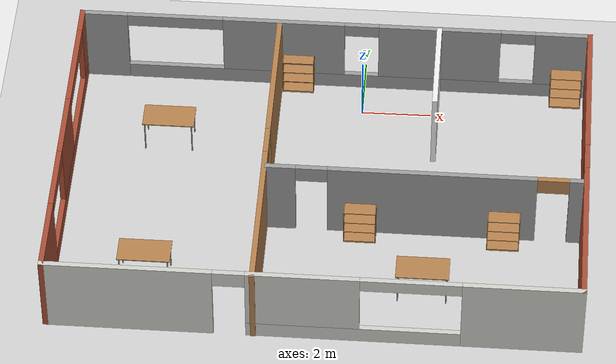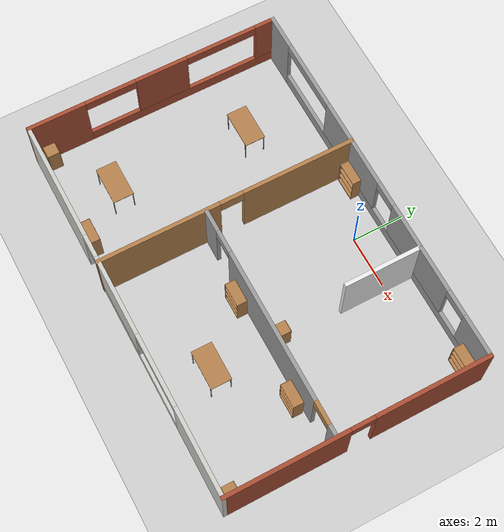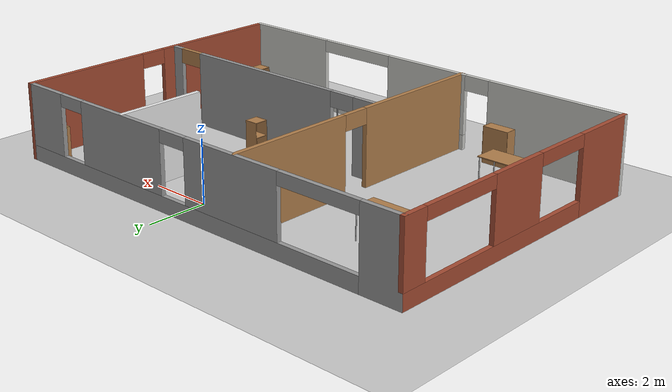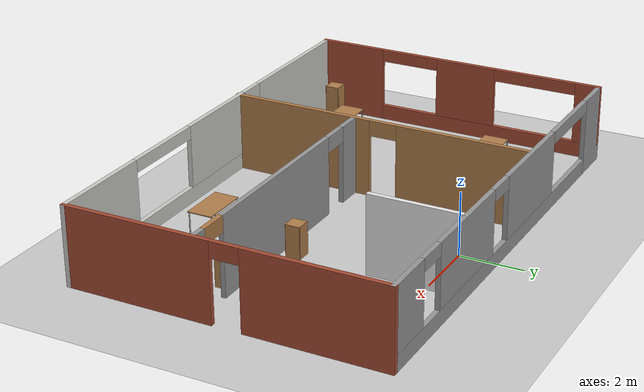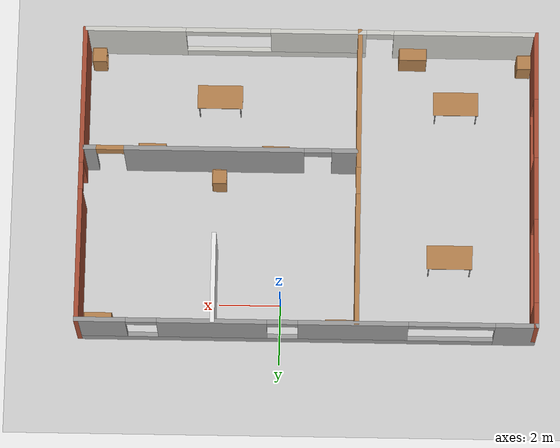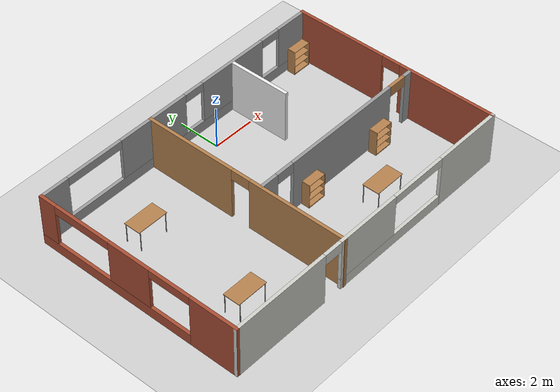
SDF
<sdf version="1.6">
 <world name="default">
  <light name="sun" type="directional">
   <pose>0 0 10 0 -0 0</pose>
   <diffuse>0.8 0.8 0.8 1</diffuse>
   <specular>0.2 0.2 0.2 1</specular>
   <attenuation>
    <range>1000</range>
    <constant>0.9</constant>
    <linear>0.01</linear>
    <quadratic>0.001</quadratic>
   </attenuation>
   <direction>-0.5 0.1 -0.9</direction>
  </light>
  <model name="ground_plane">
   <static>1</static>
   <link name="link">
    <collision name="collision">
     <geometry><plane><normal>0 0 1</normal><size>100 100</size></plane></geometry>
     <surface><friction><ode><mu>100</mu><mu2>50</mu2></ode></friction></surface>
    </collision>
    <visual name="visual">
     <cast_shadows>0</cast_shadows>
     <geometry><plane><normal>0 0 1</normal><size>100 100</size></plane></geometry>
     <material>
      <script><uri>file://media/materials/scripts/gazebo.material</uri><name>Gazebo/Grey</name></script>
     </material>
    </visual>
   </link>
  </model>
  <gravity>0 0 -9.8</gravity>
  <magnetic_field>6e-06 2.3e-05 -4.2e-05</magnetic_field>
  <atmosphere type="adiabatic"/>
  <physics name="default_physics" default="0" type="ode">
   <max_step_size>0.001</max_step_size>
   <real_time_factor>1</real_time_factor>
   <real_time_update_rate>1000</real_time_update_rate>
  </physics>
  <scene><ambient>0.4 0.4 0.4 1</ambient><background>0.7 0.7 0.7 1</background><shadows>1</shadows></scene>
  <spherical_coordinates>
   <surface_model>EARTH_WGS84</surface_model>
   <latitude_deg>0</latitude_deg>
   <longitude_deg>0</longitude_deg>
   <elevation>0</elevation>
   <heading_deg>0</heading_deg>
  </spherical_coordinates>
  <model name="Building">
   <pose>-0.87492 -3.80883 0 0 -0 0</pose>
   <link name="Wall_11">
    <collision name="Wall_11_Collision">
     <geometry><box><size>3 0.15 2.5</size></box></geometry>
     <pose>0 0 1.25 0 -0 0</pose>
    </collision>
    <visual name="Wall_11_Visual">
     <pose>0 0 1.25 0 -0 0</pose>
     <geometry><box><size>3 0.15 2.5</size></box></geometry>
     <material>
      <script><uri>file://media/materials/scripts/gazebo.material</uri><name>Gazebo/White</name></script>
      <ambient>0.996078 0.47451 0.0196078 1</ambient>
     </material>
     <meta><layer>0</layer></meta>
    </visual>
    <pose>3.03862 3.47222 0 0 0 -1.5708</pose>
   </link>
   <link name="Wall_2">
    <pose>-7.425 0.012574 0 0 -0 1.5708</pose>
    <visual name="Wall_2_Visual_0">
     <pose>-3.85798 0 1.25 0 -0 0</pose>
     <geometry><box><size>2.28405 0.15 2.5</size></box></geometry>
     <material>
      <script><uri>file://media/materials/scripts/gazebo.material</uri><name>Gazebo/Bricks</name></script>
      <ambient>1 1 1 1</ambient>
     </material>
     <meta><layer>0</layer></meta>
    </visual>
    <collision name="Wall_2_Collision_0">
     <geometry><box><size>2.28405 0.15 2.5</size></box></geometry>
     <pose>-3.85798 0 1.25 0 -0 0</pose>
    </collision>
    <visual name="Wall_2_Visual_1">
     <pose>1.14202 0 0.25 0 -0 0</pose>
     <geometry><box><size>7.71595 0.15 0.5</size></box></geometry>
     <material>
      <script><uri>file://media/materials/scripts/gazebo.material</uri><name>Gazebo/Bricks</name></script>
      <ambient>1 1 1 1</ambient>
     </material>
     <meta><layer>0</layer></meta>
    </visual>
    <collision name="Wall_2_Collision_1">
     <geometry><box><size>7.71595 0.15 0.5</size></box></geometry>
     <pose>1.14202 0 0.25 0 -0 0</pose>
    </collision>
    <visual name="Wall_2_Visual_2">
     <pose>0.319732 0 1.5 0 -0 0</pose>
     <geometry><box><size>2.07137 0.15 2</size></box></geometry>
     <material>
      <script><uri>file://media/materials/scripts/gazebo.material</uri><name>Gazebo/Bricks</name></script>
      <ambient>1 1 1 1</ambient>
     </material>
     <meta><layer>0</layer></meta>
    </visual>
    <collision name="Wall_2_Collision_2">
     <geometry><box><size>2.07137 0.15 2</size></box></geometry>
     <pose>0.319732 0 1.5 0 -0 0</pose>
    </collision>
    <visual name="Wall_2_Visual_3">
     <pose>4.57771 0 1.5 0 -0 0</pose>
     <geometry><box><size>0.844581 0.15 2</size></box></geometry>
     <material>
      <script><uri>file://media/materials/scripts/gazebo.material</uri><name>Gazebo/Bricks</name></script>
      <ambient>1 1 1 1</ambient>
     </material>
     <meta><layer>0</layer></meta>
    </visual>
    <collision name="Wall_2_Collision_3">
     <geometry><box><size>0.844581 0.15 2</size></box></geometry>
     <pose>4.57771 0 1.5 0 -0 0</pose>
    </collision>
    <visual name="Wall_2_Visual_4">
     <pose>-1.71595 0 2.3 0 -0 0</pose>
     <geometry><box><size>2 0.15 0.4</size></box></geometry>
     <material>
      <script><uri>file://media/materials/scripts/gazebo.material</uri><name>Gazebo/Bricks</name></script>
      <ambient>1 1 1 1</ambient>
     </material>
     <meta><layer>0</layer></meta>
    </visual>
    <collision name="Wall_2_Collision_4">
     <geometry><box><size>2 0.15 0.4</size></box></geometry>
     <pose>-1.71595 0 2.3 0 -0 0</pose>
    </collision>
    <visual name="Wall_2_Visual_5">
     <pose>2.75542 0 2.3 0 -0 0</pose>
     <geometry><box><size>2.8 0.15 0.4</size></box></geometry>
     <material>
      <script><uri>file://media/materials/scripts/gazebo.material</uri><name>Gazebo/Bricks</name></script>
      <ambient>1 1 1 1</ambient>
     </material>
     <meta><layer>0</layer></meta>
    </visual>
    <collision name="Wall_2_Collision_5">
     <geometry><box><size>2.8 0.15 0.4</size></box></geometry>
     <pose>2.75542 0 2.3 0 -0 0</pose>
    </collision>
   </link>
   <link name="Wall_3">
    <pose>0 4.93757 0 0 -0 0</pose>
    <visual name="Wall_3_Visual_0">
     <pose>-6.80132 0 1.25 0 -0 0</pose>
     <geometry><box><size>1.39737 0.15 2.5</size></box></geometry>
     <material>
      <script><uri>file://media/materials/scripts/gazebo.material</uri><name>Gazebo/Grey</name></script>
      <ambient>1 1 1 1</ambient>
     </material>
     <meta><layer>0</layer></meta>
    </visual>
    <collision name="Wall_3_Collision_0">
     <geometry><box><size>1.39737 0.15 2.5</size></box></geometry>
     <pose>-6.80132 0 1.25 0 -0 0</pose>
    </collision>
    <visual name="Wall_3_Visual_1">
     <pose>0.698683 0 0.25 0 -0 0</pose>
     <geometry><box><size>13.6026 0.15 0.5</size></box></geometry>
     <material>
      <script><uri>file://media/materials/scripts/gazebo.material</uri><name>Gazebo/Grey</name></script>
      <ambient>1 1 1 1</ambient>
     </material>
     <meta><layer>0</layer></meta>
    </visual>
    <collision name="Wall_3_Collision_1">
     <geometry><box><size>13.6026 0.15 0.5</size></box></geometry>
     <pose>0.698683 0 0.25 0 -0 0</pose>
    </collision>
    <visual name="Wall_3_Visual_2">
     <pose>-1.51506 0 1.5 0 -0 0</pose>
     <geometry><box><size>3.57515 0.15 2</size></box></geometry>
     <material>
      <script><uri>file://media/materials/scripts/gazebo.material</uri><name>Gazebo/Grey</name></script>
      <ambient>1 1 1 1</ambient>
     </material>
     <meta><layer>0</layer></meta>
    </visual>
    <collision name="Wall_3_Collision_2">
     <geometry><box><size>3.57515 0.15 2</size></box></geometry>
     <pose>-1.51506 0 1.5 0 -0 0</pose>
    </collision>
    <visual name="Wall_3_Visual_3">
     <pose>3.05383 0 1.5 0 -0 0</pose>
     <geometry><box><size>3.56263 0.15 2</size></box></geometry>
     <material>
      <script><uri>file://media/materials/scripts/gazebo.material</uri><name>Gazebo/Grey</name></script>
      <ambient>1 1 1 1</ambient>
     </material>
     <meta><layer>0</layer></meta>
    </visual>
    <collision name="Wall_3_Collision_3">
     <geometry><box><size>3.56263 0.15 2</size></box></geometry>
     <pose>3.05383 0 1.5 0 -0 0</pose>
    </collision>
    <visual name="Wall_3_Visual_4">
     <pose>6.66757 0 1.5 0 -0 0</pose>
     <geometry><box><size>1.66486 0.15 2</size></box></geometry>
     <material>
      <script><uri>file://media/materials/scripts/gazebo.material</uri><name>Gazebo/Grey</name></script>
      <ambient>1 1 1 1</ambient>
     </material>
     <meta><layer>0</layer></meta>
    </visual>
    <collision name="Wall_3_Collision_4">
     <geometry><box><size>1.66486 0.15 2</size></box></geometry>
     <pose>6.66757 0 1.5 0 -0 0</pose>
    </collision>
    <visual name="Wall_3_Visual_5">
     <pose>-4.70263 0 2.3 0 -0 0</pose>
     <geometry><box><size>2.8 0.15 0.4</size></box></geometry>
     <material>
      <script><uri>file://media/materials/scripts/gazebo.material</uri><name>Gazebo/Grey</name></script>
      <ambient>1 1 1 1</ambient>
     </material>
     <meta><layer>0</layer></meta>
    </visual>
    <collision name="Wall_3_Collision_5">
     <geometry><box><size>2.8 0.15 0.4</size></box></geometry>
     <pose>-4.70263 0 2.3 0 -0 0</pose>
    </collision>
    <visual name="Wall_3_Visual_6">
     <pose>0.772516 0 2.3 0 -0 0</pose>
     <geometry><box><size>1 0.15 0.4</size></box></geometry>
     <material>
      <script><uri>file://media/materials/scripts/gazebo.material</uri><name>Gazebo/Grey</name></script>
      <ambient>1 1 1 1</ambient>
     </material>
     <meta><layer>0</layer></meta>
    </visual>
    <collision name="Wall_3_Collision_6">
     <geometry><box><size>1 0.15 0.4</size></box></geometry>
     <pose>0.772516 0 2.3 0 -0 0</pose>
    </collision>
    <visual name="Wall_3_Visual_7">
     <pose>5.33514 0 2.3 0 -0 0</pose>
     <geometry><box><size>1 0.15 0.4</size></box></geometry>
     <material>
      <script><uri>file://media/materials/scripts/gazebo.material</uri><name>Gazebo/Grey</name></script>
      <ambient>1 1 1 1</ambient>
     </material>
     <meta><layer>0</layer></meta>
    </visual>
    <collision name="Wall_3_Collision_7">
     <geometry><box><size>1 0.15 0.4</size></box></geometry>
     <pose>5.33514 0 2.3 0 -0 0</pose>
    </collision>
   </link>
   <link name="Wall_4">
    <pose>7.425 0.012574 0 0 0 -1.5708</pose>
    <visual name="Wall_4_Visual_0">
     <pose>-2.78715 0 1.25 0 -0 0</pose>
     <geometry><box><size>4.4257 0.15 2.5</size></box></geometry>
     <material>
      <script><uri>file://media/materials/scripts/gazebo.material</uri><name>Gazebo/Bricks</name></script>
      <ambient>1 1 1 1</ambient>
     </material>
     <meta><layer>0</layer></meta>
    </visual>
    <collision name="Wall_4_Collision_0">
     <geometry><box><size>4.4257 0.15 2.5</size></box></geometry>
     <pose>-2.78715 0 1.25 0 -0 0</pose>
    </collision>
    <visual name="Wall_4_Visual_1">
     <pose>2.66285 0 1.25 0 -0 0</pose>
     <geometry><box><size>4.67431 0.15 2.5</size></box></geometry>
     <material>
      <script><uri>file://media/materials/scripts/gazebo.material</uri><name>Gazebo/Bricks</name></script>
      <ambient>1 1 1 1</ambient>
     </material>
     <meta><layer>0</layer></meta>
    </visual>
    <collision name="Wall_4_Collision_1">
     <geometry><box><size>4.67431 0.15 2.5</size></box></geometry>
     <pose>2.66285 0 1.25 0 -0 0</pose>
    </collision>
    <visual name="Wall_4_Visual_2">
     <pose>-0.124305 0 2.25 0 -0 0</pose>
     <geometry><box><size>0.9 0.15 0.5</size></box></geometry>
     <material>
      <script><uri>file://media/materials/scripts/gazebo.material</uri><name>Gazebo/Bricks</name></script>
      <ambient>1 1 1 1</ambient>
     </material>
     <meta><layer>0</layer></meta>
    </visual>
    <collision name="Wall_4_Collision_2">
     <geometry><box><size>0.9 0.15 0.5</size></box></geometry>
     <pose>-0.124305 0 2.25 0 -0 0</pose>
    </collision>
   </link>
   <link name="Wall_5">
    <pose>0 -4.91243 0 0 -0 3.14159</pose>
    <visual name="Wall_5_Visual_0">
     <pose>-5.80962 0 1.25 0 -0 0</pose>
     <geometry><box><size>3.38076 0.15 2.5</size></box></geometry>
     <material>
      <script><uri>file://media/materials/scripts/gazebo.material</uri><name>Gazebo/CeilingTiled</name></script>
      <ambient>1 1 1 1</ambient>
     </material>
     <meta><layer>0</layer></meta>
    </visual>
    <collision name="Wall_5_Collision_0">
     <geometry><box><size>3.38076 0.15 2.5</size></box></geometry>
     <pose>-5.80962 0 1.25 0 -0 0</pose>
    </collision>
    <visual name="Wall_5_Visual_1">
     <pose>5.11722 0 1.25 0 -0 0</pose>
     <geometry><box><size>4.76556 0.15 2.5</size></box></geometry>
     <material>
      <script><uri>file://media/materials/scripts/gazebo.material</uri><name>Gazebo/CeilingTiled</name></script>
      <ambient>1 1 1 1</ambient>
     </material>
     <meta><layer>0</layer></meta>
    </visual>
    <collision name="Wall_5_Collision_1">
     <geometry><box><size>4.76556 0.15 2.5</size></box></geometry>
     <pose>5.11722 0 1.25 0 -0 0</pose>
    </collision>
    <visual name="Wall_5_Visual_2">
     <pose>-1.1424 0 0.25 0 -0 0</pose>
     <geometry><box><size>5.95368 0.15 0.5</size></box></geometry>
     <material>
      <script><uri>file://media/materials/scripts/gazebo.material</uri><name>Gazebo/CeilingTiled</name></script>
      <ambient>1 1 1 1</ambient>
     </material>
     <meta><layer>0</layer></meta>
    </visual>
    <collision name="Wall_5_Collision_2">
     <geometry><box><size>5.95368 0.15 0.5</size></box></geometry>
     <pose>-1.1424 0 0.25 0 -0 0</pose>
    </collision>
    <visual name="Wall_5_Visual_3">
     <pose>0.257603 0 1.5 0 -0 0</pose>
     <geometry><box><size>3.15368 0.15 2</size></box></geometry>
     <material>
      <script><uri>file://media/materials/scripts/gazebo.material</uri><name>Gazebo/CeilingTiled</name></script>
      <ambient>1 1 1 1</ambient>
     </material>
     <meta><layer>0</layer></meta>
    </visual>
    <collision name="Wall_5_Collision_3">
     <geometry><box><size>3.15368 0.15 2</size></box></geometry>
     <pose>0.257603 0 1.5 0 -0 0</pose>
    </collision>
    <visual name="Wall_5_Visual_4">
     <pose>2.28444 0 2.25 0 -0 0</pose>
     <geometry><box><size>0.9 0.15 0.5</size></box></geometry>
     <material>
      <script><uri>file://media/materials/scripts/gazebo.material</uri><name>Gazebo/CeilingTiled</name></script>
      <ambient>1 1 1 1</ambient>
     </material>
     <meta><layer>0</layer></meta>
    </visual>
    <collision name="Wall_5_Collision_4">
     <geometry><box><size>0.9 0.15 0.5</size></box></geometry>
     <pose>2.28444 0 2.25 0 -0 0</pose>
    </collision>
    <visual name="Wall_5_Visual_5">
     <pose>-2.71924 0 2.3 0 -0 0</pose>
     <geometry><box><size>2.8 0.15 0.4</size></box></geometry>
     <material>
      <script><uri>file://media/materials/scripts/gazebo.material</uri><name>Gazebo/CeilingTiled</name></script>
      <ambient>1 1 1 1</ambient>
     </material>
     <meta><layer>0</layer></meta>
    </visual>
    <collision name="Wall_5_Collision_5">
     <geometry><box><size>2.8 0.15 0.4</size></box></geometry>
     <pose>-2.71924 0 2.3 0 -0 0</pose>
    </collision>
   </link>
   <link name="Wall_7">
    <pose>-1.63047 -0.012574 0 0 0 -1.5708</pose>
    <visual name="Wall_7_Visual_0">
     <pose>-2.80733 0 1.25 0 -0 0</pose>
     <geometry><box><size>4.38534 0.15 2.5</size></box></geometry>
     <material>
      <script><uri>file://media/materials/scripts/gazebo.material</uri><name>Gazebo/Wood</name></script>
      <ambient>1 1 1 1</ambient>
     </material>
     <meta><layer>0</layer></meta>
    </visual>
    <collision name="Wall_7_Collision_0">
     <geometry><box><size>4.38534 0.15 2.5</size></box></geometry>
     <pose>-2.80733 0 1.25 0 -0 0</pose>
    </collision>
    <visual name="Wall_7_Visual_1">
     <pose>2.64267 0 1.25 0 -0 0</pose>
     <geometry><box><size>4.71466 0.15 2.5</size></box></geometry>
     <material>
      <script><uri>file://media/materials/scripts/gazebo.material</uri><name>Gazebo/Wood</name></script>
      <ambient>1 1 1 1</ambient>
     </material>
     <meta><layer>0</layer></meta>
    </visual>
    <collision name="Wall_7_Collision_1">
     <geometry><box><size>4.71466 0.15 2.5</size></box></geometry>
     <pose>2.64267 0 1.25 0 -0 0</pose>
    </collision>
    <visual name="Wall_7_Visual_2">
     <pose>-0.164661 0 2.25 0 -0 0</pose>
     <geometry><box><size>0.9 0.15 0.5</size></box></geometry>
     <material>
      <script><uri>file://media/materials/scripts/gazebo.material</uri><name>Gazebo/Wood</name></script>
      <ambient>1 1 1 1</ambient>
     </material>
     <meta><layer>0</layer></meta>
    </visual>
    <collision name="Wall_7_Collision_2">
     <geometry><box><size>0.9 0.15 0.5</size></box></geometry>
     <pose>-0.164661 0 2.25 0 -0 0</pose>
    </collision>
   </link>
   <link name="Wall_9">
    <pose>2.88579 -0.836482 0 0 -0 0</pose>
    <visual name="Wall_9_Visual_0">
     <pose>-4.06394 0 1.25 0 -0 0</pose>
     <geometry><box><size>0.872117 0.15 2.5</size></box></geometry>
     <material>
      <script><uri>file://media/materials/scripts/gazebo.material</uri><name>Gazebo/Grey</name></script>
      <ambient>1 1 1 1</ambient>
     </material>
     <meta><layer>0</layer></meta>
    </visual>
    <collision name="Wall_9_Collision_0">
     <geometry><box><size>0.872117 0.15 2.5</size></box></geometry>
     <pose>-4.06394 0 1.25 0 -0 0</pose>
    </collision>
    <visual name="Wall_9_Visual_1">
     <pose>0.221273 0 1.25 0 -0 0</pose>
     <geometry><box><size>5.89831 0.15 2.5</size></box></geometry>
     <material>
      <script><uri>file://media/materials/scripts/gazebo.material</uri><name>Gazebo/Grey</name></script>
      <ambient>1 1 1 1</ambient>
     </material>
     <meta><layer>0</layer></meta>
    </visual>
    <collision name="Wall_9_Collision_1">
     <geometry><box><size>5.89831 0.15 2.5</size></box></geometry>
     <pose>0.221273 0 1.25 0 -0 0</pose>
    </collision>
    <visual name="Wall_9_Visual_2">
     <pose>4.28521 0 1.25 0 -0 0</pose>
     <geometry><box><size>0.429571 0.15 2.5</size></box></geometry>
     <material>
      <script><uri>file://media/materials/scripts/gazebo.material</uri><name>Gazebo/Grey</name></script>
      <ambient>1 1 1 1</ambient>
     </material>
     <meta><layer>0</layer></meta>
    </visual>
    <collision name="Wall_9_Collision_2">
     <geometry><box><size>0.429571 0.15 2.5</size></box></geometry>
     <pose>4.28521 0 1.25 0 -0 0</pose>
    </collision>
    <visual name="Wall_9_Visual_3">
     <pose>-3.17788 0 2.25 0 -0 0</pose>
     <geometry><box><size>0.9 0.15 0.5</size></box></geometry>
     <material>
      <script><uri>file://media/materials/scripts/gazebo.material</uri><name>Gazebo/Grey</name></script>
      <ambient>1 1 1 1</ambient>
     </material>
     <meta><layer>0</layer></meta>
    </visual>
    <collision name="Wall_9_Collision_3">
     <geometry><box><size>0.9 0.15 0.5</size></box></geometry>
     <pose>-3.17788 0 2.25 0 -0 0</pose>
    </collision>
    <visual name="Wall_9_Visual_4">
     <pose>3.62043 0 2.25 0 -0 0</pose>
     <geometry><box><size>0.9 0.15 0.5</size></box></geometry>
     <material>
      <script><uri>file://media/materials/scripts/gazebo.material</uri><name>Gazebo/Wood</name></script>
      <ambient>1 1 1 1</ambient>
     </material>
     <meta><layer>0</layer></meta>
    </visual>
    <collision name="Wall_9_Collision_4">
     <geometry><box><size>0.9 0.15 0.5</size></box></geometry>
     <pose>3.62043 0 2.25 0 -0 0</pose>
    </collision>
   </link>
   <static>1</static>
  </model>
  <model name="cabinet">
   <static>1</static>
   <link name="cabinet_bottom_plate">
    <inertial>
     <pose>0 0 -1 0 -0 0</pose>
     <inertia><ixx>2.05</ixx><ixy>0</ixy><ixz>0</ixz><iyy>2.05</iyy><iyz>0</iyz><izz>2.05</izz></inertia>
     <mass>25</mass>
    </inertial>
    <collision name="cabinet_bottom_plate_geom">
     <pose>0 0 0.01 0 -0 0</pose>
     <geometry><box><size>0.45 0.45 0.02</size></box></geometry>
    </collision>
    <visual name="cabinet_bottom_plate_geom_visual">
     <pose>0 0 0.01 0 -0 0</pose>
     <geometry><box><size>0.45 0.45 0.02</size></box></geometry>
     <material>
      <script><uri>file://media/materials/scripts/gazebo.material</uri><name>Gazebo/Wood</name></script>
     </material>
    </visual>
    <collision name="cabinet_bottom_plate_geom_cabinet_back_plate">
     <pose>0.235 0 0.51 0 -0 0</pose>
     <geometry><box><size>0.02 0.45 1.02</size></box></geometry>
    </collision>
    <visual name="cabinet_bottom_plate_geom_cabinet_back_plate_visual">
     <pose>0.235 0 0.51 0 -0 0</pose>
     <geometry><box><size>0.02 0.45 1.02</size></box></geometry>
     <material>
      <script><uri>file://media/materials/scripts/gazebo.material</uri><name>Gazebo/Wood</name></script>
     </material>
    </visual>
    <collision name="cabinet_bottom_plate_geom_cabinet_left_plate">
     <pose>0 0.235 0.51 0 -0 0</pose>
     <geometry><box><size>0.45 0.02 1.02</size></box></geometry>
    </collision>
    <visual name="cabinet_bottom_plate_geom_cabinet_left_plate_visual">
     <pose>0 0.235 0.51 0 -0 0</pose>
     <geometry><box><size>0.45 0.02 1.02</size></box></geometry>
     <material>
      <script><uri>file://media/materials/scripts/gazebo.material</uri><name>Gazebo/Wood</name></script>
     </material>
    </visual>
    <collision name="cabinet_bottom_plate_geom_cabinet_middle_plate">
     <pose>0 0 0.51 0 -0 0</pose>
     <geometry><box><size>0.45 0.45 0.02</size></box></geometry>
    </collision>
    <visual name="cabinet_bottom_plate_geom_cabinet_middle_plate_visual">
     <pose>0 0 0.51 0 -0 0</pose>
     <geometry><box><size>0.45 0.45 0.02</size></box></geometry>
     <material>
      <script><uri>file://media/materials/scripts/gazebo.material</uri><name>Gazebo/Wood</name></script>
     </material>
    </visual>
    <collision name="cabinet_bottom_plate_geom_cabinet_right_plate">
     <pose>0 -0.235 0.51 0 -0 0</pose>
     <geometry><box><size>0.45 0.02 1.02</size></box></geometry>
    </collision>
    <visual name="cabinet_bottom_plate_geom_cabinet_right_plate_visual">
     <pose>0 -0.235 0.51 0 -0 0</pose>
     <geometry><box><size>0.45 0.02 1.02</size></box></geometry>
     <material>
      <script><uri>file://media/materials/scripts/gazebo.material</uri><name>Gazebo/Wood</name></script>
     </material>
    </visual>
    <collision name="cabinet_bottom_plate_geom_cabinet_top_plate">
     <pose>0 0 1.01 0 -0 0</pose>
     <geometry><box><size>0.45 0.45 0.02</size></box></geometry>
    </collision>
    <visual name="cabinet_bottom_plate_geom_cabinet_top_plate_visual">
     <pose>0 0 1.01 0 -0 0</pose>
     <geometry><box><size>0.45 0.45 0.02</size></box></geometry>
     <material>
      <script><uri>file://media/materials/scripts/gazebo.material</uri><name>Gazebo/Wood</name></script>
     </material>
    </visual>
   </link>
   <pose>6.14164 -8.28114 0 0 -0 0</pose>
  </model>
  <model name="cabinet_0">
   <static>1</static>
   <link name="cabinet_bottom_plate">
    <inertial>
     <pose>0 0 -1 0 -0 0</pose>
     <inertia><ixx>2.05</ixx><ixy>0</ixy><ixz>0</ixz><iyy>2.05</iyy><iyz>0</iyz><izz>2.05</izz></inertia>
     <mass>25</mass>
    </inertial>
    <collision name="cabinet_bottom_plate_geom">
     <pose>0 0 0.01 0 -0 0</pose>
     <geometry><box><size>0.45 0.45 0.02</size></box></geometry>
    </collision>
    <visual name="cabinet_bottom_plate_geom_visual">
     <pose>0 0 0.01 0 -0 0</pose>
     <geometry><box><size>0.45 0.45 0.02</size></box></geometry>
     <material>
      <script><uri>file://media/materials/scripts/gazebo.material</uri><name>Gazebo/Wood</name></script>
     </material>
    </visual>
    <collision name="cabinet_bottom_plate_geom_cabinet_back_plate">
     <pose>0.235 0 0.51 0 -0 0</pose>
     <geometry><box><size>0.02 0.45 1.02</size></box></geometry>
    </collision>
    <visual name="cabinet_bottom_plate_geom_cabinet_back_plate_visual">
     <pose>0.235 0 0.51 0 -0 0</pose>
     <geometry><box><size>0.02 0.45 1.02</size></box></geometry>
     <material>
      <script><uri>file://media/materials/scripts/gazebo.material</uri><name>Gazebo/Wood</name></script>
     </material>
    </visual>
    <collision name="cabinet_bottom_plate_geom_cabinet_left_plate">
     <pose>0 0.235 0.51 0 -0 0</pose>
     <geometry><box><size>0.45 0.02 1.02</size></box></geometry>
    </collision>
    <visual name="cabinet_bottom_plate_geom_cabinet_left_plate_visual">
     <pose>0 0.235 0.51 0 -0 0</pose>
     <geometry><box><size>0.45 0.02 1.02</size></box></geometry>
     <material>
      <script><uri>file://media/materials/scripts/gazebo.material</uri><name>Gazebo/Wood</name></script>
     </material>
    </visual>
    <collision name="cabinet_bottom_plate_geom_cabinet_middle_plate">
     <pose>0 0 0.51 0 -0 0</pose>
     <geometry><box><size>0.45 0.45 0.02</size></box></geometry>
    </collision>
    <visual name="cabinet_bottom_plate_geom_cabinet_middle_plate_visual">
     <pose>0 0 0.51 0 -0 0</pose>
     <geometry><box><size>0.45 0.45 0.02</size></box></geometry>
     <material>
      <script><uri>file://media/materials/scripts/gazebo.material</uri><name>Gazebo/Wood</name></script>
     </material>
    </visual>
    <collision name="cabinet_bottom_plate_geom_cabinet_right_plate">
     <pose>0 -0.235 0.51 0 -0 0</pose>
     <geometry><box><size>0.45 0.02 1.02</size></box></geometry>
    </collision>
    <visual name="cabinet_bottom_plate_geom_cabinet_right_plate_visual">
     <pose>0 -0.235 0.51 0 -0 0</pose>
     <geometry><box><size>0.45 0.02 1.02</size></box></geometry>
     <material>
      <script><uri>file://media/materials/scripts/gazebo.material</uri><name>Gazebo/Wood</name></script>
     </material>
    </visual>
    <collision name="cabinet_bottom_plate_geom_cabinet_top_plate">
     <pose>0 0 1.01 0 -0 0</pose>
     <geometry><box><size>0.45 0.45 0.02</size></box></geometry>
    </collision>
    <visual name="cabinet_bottom_plate_geom_cabinet_top_plate_visual">
     <pose>0 0 1.01 0 -0 0</pose>
     <geometry><box><size>0.45 0.45 0.02</size></box></geometry>
     <material>
      <script><uri>file://media/materials/scripts/gazebo.material</uri><name>Gazebo/Wood</name></script>
     </material>
    </visual>
   </link>
   <pose>-7.9791 -8.2308 0 0 -0 0</pose>
  </model>
  <model name="cabinet_1">
   <static>1</static>
   <link name="cabinet_bottom_plate">
    <inertial>
     <pose>0 0 -1 0 -0 0</pose>
     <inertia><ixx>2.05</ixx><ixy>0</ixy><ixz>0</ixz><iyy>2.05</iyy><iyz>0</iyz><izz>2.05</izz></inertia>
     <mass>25</mass>
    </inertial>
    <collision name="cabinet_bottom_plate_geom">
     <pose>0 0 0.01 0 -0 0</pose>
     <geometry><box><size>0.45 0.45 0.02</size></box></geometry>
    </collision>
    <visual name="cabinet_bottom_plate_geom_visual">
     <pose>0 0 0.01 0 -0 0</pose>
     <geometry><box><size>0.45 0.45 0.02</size></box></geometry>
     <material>
      <script><uri>file://media/materials/scripts/gazebo.material</uri><name>Gazebo/Wood</name></script>
     </material>
    </visual>
    <collision name="cabinet_bottom_plate_geom_cabinet_back_plate">
     <pose>0.235 0 0.51 0 -0 0</pose>
     <geometry><box><size>0.02 0.45 1.02</size></box></geometry>
    </collision>
    <visual name="cabinet_bottom_plate_geom_cabinet_back_plate_visual">
     <pose>0.235 0 0.51 0 -0 0</pose>
     <geometry><box><size>0.02 0.45 1.02</size></box></geometry>
     <material>
      <script><uri>file://media/materials/scripts/gazebo.material</uri><name>Gazebo/Wood</name></script>
     </material>
    </visual>
    <collision name="cabinet_bottom_plate_geom_cabinet_left_plate">
     <pose>0 0.235 0.51 0 -0 0</pose>
     <geometry><box><size>0.45 0.02 1.02</size></box></geometry>
    </collision>
    <visual name="cabinet_bottom_plate_geom_cabinet_left_plate_visual">
     <pose>0 0.235 0.51 0 -0 0</pose>
     <geometry><box><size>0.45 0.02 1.02</size></box></geometry>
     <material>
      <script><uri>file://media/materials/scripts/gazebo.material</uri><name>Gazebo/Wood</name></script>
     </material>
    </visual>
    <collision name="cabinet_bottom_plate_geom_cabinet_middle_plate">
     <pose>0 0 0.51 0 -0 0</pose>
     <geometry><box><size>0.45 0.45 0.02</size></box></geometry>
    </collision>
    <visual name="cabinet_bottom_plate_geom_cabinet_middle_plate_visual">
     <pose>0 0 0.51 0 -0 0</pose>
     <geometry><box><size>0.45 0.45 0.02</size></box></geometry>
     <material>
      <script><uri>file://media/materials/scripts/gazebo.material</uri><name>Gazebo/Wood</name></script>
     </material>
    </visual>
    <collision name="cabinet_bottom_plate_geom_cabinet_right_plate">
     <pose>0 -0.235 0.51 0 -0 0</pose>
     <geometry><box><size>0.45 0.02 1.02</size></box></geometry>
    </collision>
    <visual name="cabinet_bottom_plate_geom_cabinet_right_plate_visual">
     <pose>0 -0.235 0.51 0 -0 0</pose>
     <geometry><box><size>0.45 0.02 1.02</size></box></geometry>
     <material>
      <script><uri>file://media/materials/scripts/gazebo.material</uri><name>Gazebo/Wood</name></script>
     </material>
    </visual>
    <collision name="cabinet_bottom_plate_geom_cabinet_top_plate">
     <pose>0 0 1.01 0 -0 0</pose>
     <geometry><box><size>0.45 0.45 0.02</size></box></geometry>
    </collision>
    <visual name="cabinet_bottom_plate_geom_cabinet_top_plate_visual">
     <pose>0 0 1.01 0 -0 0</pose>
     <geometry><box><size>0.45 0.45 0.02</size></box></geometry>
     <material>
      <script><uri>file://media/materials/scripts/gazebo.material</uri><name>Gazebo/Wood</name></script>
     </material>
    </visual>
   </link>
   <pose>2.06399 -4.12799 0 0 -0 0</pose>
  </model>
  <model name="table">
   <static>1</static>
   <link name="link">
    <collision name="surface">
     <pose>0 0 1 0 -0 0</pose>
     <geometry><box><size>1.5 0.8 0.03</size></box></geometry>
     <surface><friction><ode><mu>0.6</mu><mu2>0.6</mu2></ode></friction></surface>
    </collision>
    <visual name="visual1">
     <pose>0 0 1 0 -0 0</pose>
     <geometry><box><size>1.5 0.8 0.03</size></box></geometry>
     <material>
      <script><uri>file://media/materials/scripts/gazebo.material</uri><name>Gazebo/Wood</name></script>
     </material>
    </visual>
    <collision name="front_left_leg">
     <pose>0.68 0.38 0.5 0 -0 0</pose>
     <geometry><cylinder><radius>0.02</radius><length>1</length></cylinder></geometry>
    </collision>
    <visual name="front_left_leg">
     <pose>0.68 0.38 0.5 0 -0 0</pose>
     <geometry><cylinder><radius>0.02</radius><length>1</length></cylinder></geometry>
     <material>
      <script><uri>file://media/materials/scripts/gazebo.material</uri><name>Gazebo/Grey</name></script>
     </material>
    </visual>
    <collision name="front_right_leg">
     <pose>0.68 -0.38 0.5 0 -0 0</pose>
     <geometry><cylinder><radius>0.02</radius><length>1</length></cylinder></geometry>
    </collision>
    <visual name="front_right_leg">
     <pose>0.68 -0.38 0.5 0 -0 0</pose>
     <geometry><cylinder><radius>0.02</radius><length>1</length></cylinder></geometry>
     <material>
      <script><uri>file://media/materials/scripts/gazebo.material</uri><name>Gazebo/Grey</name></script>
     </material>
    </visual>
    <collision name="back_right_leg">
     <pose>-0.68 -0.38 0.5 0 -0 0</pose>
     <geometry><cylinder><radius>0.02</radius><length>1</length></cylinder></geometry>
    </collision>
    <visual name="back_right_leg">
     <pose>-0.68 -0.38 0.5 0 -0 0</pose>
     <geometry><cylinder><radius>0.02</radius><length>1</length></cylinder></geometry>
     <material>
      <script><uri>file://media/materials/scripts/gazebo.material</uri><name>Gazebo/Grey</name></script>
     </material>
    </visual>
    <collision name="back_left_leg">
     <pose>-0.68 0.38 0.5 0 -0 0</pose>
     <geometry><cylinder><radius>0.02</radius><length>1</length></cylinder></geometry>
    </collision>
    <visual name="back_left_leg">
     <pose>-0.68 0.38 0.5 0 -0 0</pose>
     <geometry><cylinder><radius>0.02</radius><length>1</length></cylinder></geometry>
     <material>
      <script><uri>file://media/materials/scripts/gazebo.material</uri><name>Gazebo/Grey</name></script>
     </material>
    </visual>
   </link>
   <pose>-5.53754 -1.48507 0 0 -0 0</pose>
  </model>
  <model name="table_0">
   <static>1</static>
   <link name="link">
    <collision name="surface">
     <pose>0 0 1 0 -0 0</pose>
     <geometry><box><size>1.5 0.8 0.03</size></box></geometry>
     <surface><friction><ode><mu>0.6</mu><mu2>0.6</mu2></ode></friction></surface>
    </collision>
    <visual name="visual1">
     <pose>0 0 1 0 -0 0</pose>
     <geometry><box><size>1.5 0.8 0.03</size></box></geometry>
     <material>
      <script><uri>file://media/materials/scripts/gazebo.material</uri><name>Gazebo/Wood</name></script>
     </material>
    </visual>
    <collision name="front_left_leg">
     <pose>0.68 0.38 0.5 0 -0 0</pose>
     <geometry><cylinder><radius>0.02</radius><length>1</length></cylinder></geometry>
    </collision>
    <visual name="front_left_leg">
     <pose>0.68 0.38 0.5 0 -0 0</pose>
     <geometry><cylinder><radius>0.02</radius><length>1</length></cylinder></geometry>
     <material>
      <script><uri>file://media/materials/scripts/gazebo.material</uri><name>Gazebo/Grey</name></script>
     </material>
    </visual>
    <collision name="front_right_leg">
     <pose>0.68 -0.38 0.5 0 -0 0</pose>
     <geometry><cylinder><radius>0.02</radius><length>1</length></cylinder></geometry>
    </collision>
    <visual name="front_right_leg">
     <pose>0.68 -0.38 0.5 0 -0 0</pose>
     <geometry><cylinder><radius>0.02</radius><length>1</length></cylinder></geometry>
     <material>
      <script><uri>file://media/materials/scripts/gazebo.material</uri><name>Gazebo/Grey</name></script>
     </material>
    </visual>
    <collision name="back_right_leg">
     <pose>-0.68 -0.38 0.5 0 -0 0</pose>
     <geometry><cylinder><radius>0.02</radius><length>1</length></cylinder></geometry>
    </collision>
    <visual name="back_right_leg">
     <pose>-0.68 -0.38 0.5 0 -0 0</pose>
     <geometry><cylinder><radius>0.02</radius><length>1</length></cylinder></geometry>
     <material>
      <script><uri>file://media/materials/scripts/gazebo.material</uri><name>Gazebo/Grey</name></script>
     </material>
    </visual>
    <collision name="back_left_leg">
     <pose>-0.68 0.38 0.5 0 -0 0</pose>
     <geometry><cylinder><radius>0.02</radius><length>1</length></cylinder></geometry>
    </collision>
    <visual name="back_left_leg">
     <pose>-0.68 0.38 0.5 0 -0 0</pose>
     <geometry><cylinder><radius>0.02</radius><length>1</length></cylinder></geometry>
     <material>
      <script><uri>file://media/materials/scripts/gazebo.material</uri><name>Gazebo/Grey</name></script>
     </material>
    </visual>
   </link>
   <pose>-5.71374 -6.74573 0 0 -0 0</pose>
  </model>
  <model name="table_1">
   <static>1</static>
   <link name="link">
    <collision name="surface">
     <pose>0 0 1 0 -0 0</pose>
     <geometry><box><size>1.5 0.8 0.03</size></box></geometry>
     <surface><friction><ode><mu>0.6</mu><mu2>0.6</mu2></ode></friction></surface>
    </collision>
    <visual name="visual1">
     <pose>0 0 1 0 -0 0</pose>
     <geometry><box><size>1.5 0.8 0.03</size></box></geometry>
     <material>
      <script><uri>file://media/materials/scripts/gazebo.material</uri><name>Gazebo/Wood</name></script>
     </material>
    </visual>
    <collision name="front_left_leg">
     <pose>0.68 0.38 0.5 0 -0 0</pose>
     <geometry><cylinder><radius>0.02</radius><length>1</length></cylinder></geometry>
    </collision>
    <visual name="front_left_leg">
     <pose>0.68 0.38 0.5 0 -0 0</pose>
     <geometry><cylinder><radius>0.02</radius><length>1</length></cylinder></geometry>
     <material>
      <script><uri>file://media/materials/scripts/gazebo.material</uri><name>Gazebo/Grey</name></script>
     </material>
    </visual>
    <collision name="front_right_leg">
     <pose>0.68 -0.38 0.5 0 -0 0</pose>
     <geometry><cylinder><radius>0.02</radius><length>1</length></cylinder></geometry>
    </collision>
    <visual name="front_right_leg">
     <pose>0.68 -0.38 0.5 0 -0 0</pose>
     <geometry><cylinder><radius>0.02</radius><length>1</length></cylinder></geometry>
     <material>
      <script><uri>file://media/materials/scripts/gazebo.material</uri><name>Gazebo/Grey</name></script>
     </material>
    </visual>
    <collision name="back_right_leg">
     <pose>-0.68 -0.38 0.5 0 -0 0</pose>
     <geometry><cylinder><radius>0.02</radius><length>1</length></cylinder></geometry>
    </collision>
    <visual name="back_right_leg">
     <pose>-0.68 -0.38 0.5 0 -0 0</pose>
     <geometry><cylinder><radius>0.02</radius><length>1</length></cylinder></geometry>
     <material>
      <script><uri>file://media/materials/scripts/gazebo.material</uri><name>Gazebo/Grey</name></script>
     </material>
    </visual>
    <collision name="back_left_leg">
     <pose>-0.68 0.38 0.5 0 -0 0</pose>
     <geometry><cylinder><radius>0.02</radius><length>1</length></cylinder></geometry>
    </collision>
    <visual name="back_left_leg">
     <pose>-0.68 0.38 0.5 0 -0 0</pose>
     <geometry><cylinder><radius>0.02</radius><length>1</length></cylinder></geometry>
     <material>
      <script><uri>file://media/materials/scripts/gazebo.material</uri><name>Gazebo/Grey</name></script>
     </material>
    </visual>
   </link>
   <pose>2.10136 -6.87106 0 0 -0 0</pose>
  </model>
  <model name="bookshelf_0">
   <static>1</static>
   <link name="link">
    <inertial><mass>1</mass></inertial>
    <collision name="back">
     <pose>0 0.005 0.6 0 -0 0</pose>
     <geometry><box><size>0.9 0.01 1.2</size></box></geometry>
    </collision>
    <visual name="visual1">
     <pose>0 0.005 0.6 0 -0 0</pose>
     <geometry><box><size>0.9 0.01 1.2</size></box></geometry>
     <material>
      <script><uri>file://media/materials/scripts/gazebo.material</uri><name>Gazebo/Wood</name></script>
     </material>
    </visual>
    <collision name="left_side">
     <pose>0.45 -0.195 0.6 0 -0 0</pose>
     <geometry><box><size>0.02 0.4 1.2</size></box></geometry>
    </collision>
    <visual name="visual2">
     <pose>0.45 -0.195 0.6 0 -0 0</pose>
     <geometry><box><size>0.02 0.4 1.2</size></box></geometry>
     <material>
      <script><uri>file://media/materials/scripts/gazebo.material</uri><name>Gazebo/Wood</name></script>
     </material>
    </visual>
    <collision name="right_side">
     <pose>-0.45 -0.195 0.6 0 -0 0</pose>
     <geometry><box><size>0.02 0.4 1.2</size></box></geometry>
    </collision>
    <visual name="visual3">
     <pose>-0.45 -0.195 0.6 0 -0 0</pose>
     <geometry><box><size>0.02 0.4 1.2</size></box></geometry>
     <material>
      <script><uri>file://media/materials/scripts/gazebo.material</uri><name>Gazebo/Wood</name></script>
     </material>
    </visual>
    <collision name="bottom">
     <pose>0 -0.195 0.03 0 -0 0</pose>
     <geometry><box><size>0.88 0.4 0.06</size></box></geometry>
    </collision>
    <visual name="visual4">
     <pose>0 -0.195 0.03 0 -0 0</pose>
     <geometry><box><size>0.88 0.4 0.06</size></box></geometry>
     <material>
      <script><uri>file://media/materials/scripts/gazebo.material</uri><name>Gazebo/Wood</name></script>
     </material>
    </visual>
    <collision name="top">
     <pose>0 -0.195 1.19 0 -0 0</pose>
     <geometry><box><size>0.88 0.4 0.02</size></box></geometry>
    </collision>
    <visual name="visual5">
     <pose>0 -0.195 1.19 0 -0 0</pose>
     <geometry><box><size>0.88 0.4 0.02</size></box></geometry>
     <material>
      <script><uri>file://media/materials/scripts/gazebo.material</uri><name>Gazebo/Wood</name></script>
     </material>
    </visual>
    <collision name="low_shelf">
     <pose>0 -0.195 0.43 0 -0 0</pose>
     <geometry><box><size>0.88 0.4 0.02</size></box></geometry>
    </collision>
    <visual name="visual6">
     <pose>0 -0.195 0.43 0 -0 0</pose>
     <geometry><box><size>0.88 0.4 0.02</size></box></geometry>
     <material>
      <script><uri>file://media/materials/scripts/gazebo.material</uri><name>Gazebo/Wood</name></script>
     </material>
    </visual>
    <collision name="high_shelf">
     <pose>0 -0.195 0.8 0 -0 0</pose>
     <geometry><box><size>0.88 0.4 0.02</size></box></geometry>
    </collision>
    <visual name="visual7">
     <pose>0 -0.195 0.8 0 -0 0</pose>
     <geometry><box><size>0.88 0.4 0.02</size></box></geometry>
     <material>
      <script><uri>file://media/materials/scripts/gazebo.material</uri><name>Gazebo/Wood</name></script>
     </material>
    </visual>
   </link>
   <pose>5.92701 0.981579 0 0 -0 0</pose>
  </model>
  <model name="bookshelf_1">
   <static>1</static>
   <link name="link">
    <inertial><mass>1</mass></inertial>
    <collision name="back">
     <pose>0 0.005 0.6 0 -0 0</pose>
     <geometry><box><size>0.9 0.01 1.2</size></box></geometry>
    </collision>
    <visual name="visual1">
     <pose>0 0.005 0.6 0 -0 0</pose>
     <geometry><box><size>0.9 0.01 1.2</size></box></geometry>
     <material>
      <script><uri>file://media/materials/scripts/gazebo.material</uri><name>Gazebo/Wood</name></script>
     </material>
    </visual>
    <collision name="left_side">
     <pose>0.45 -0.195 0.6 0 -0 0</pose>
     <geometry><box><size>0.02 0.4 1.2</size></box></geometry>
    </collision>
    <visual name="visual2">
     <pose>0.45 -0.195 0.6 0 -0 0</pose>
     <geometry><box><size>0.02 0.4 1.2</size></box></geometry>
     <material>
      <script><uri>file://media/materials/scripts/gazebo.material</uri><name>Gazebo/Wood</name></script>
     </material>
    </visual>
    <collision name="right_side">
     <pose>-0.45 -0.195 0.6 0 -0 0</pose>
     <geometry><box><size>0.02 0.4 1.2</size></box></geometry>
    </collision>
    <visual name="visual3">
     <pose>-0.45 -0.195 0.6 0 -0 0</pose>
     <geometry><box><size>0.02 0.4 1.2</size></box></geometry>
     <material>
      <script><uri>file://media/materials/scripts/gazebo.material</uri><name>Gazebo/Wood</name></script>
     </material>
    </visual>
    <collision name="bottom">
     <pose>0 -0.195 0.03 0 -0 0</pose>
     <geometry><box><size>0.88 0.4 0.06</size></box></geometry>
    </collision>
    <visual name="visual4">
     <pose>0 -0.195 0.03 0 -0 0</pose>
     <geometry><box><size>0.88 0.4 0.06</size></box></geometry>
     <material>
      <script><uri>file://media/materials/scripts/gazebo.material</uri><name>Gazebo/Wood</name></script>
     </material>
    </visual>
    <collision name="top">
     <pose>0 -0.195 1.19 0 -0 0</pose>
     <geometry><box><size>0.88 0.4 0.02</size></box></geometry>
    </collision>
    <visual name="visual5">
     <pose>0 -0.195 1.19 0 -0 0</pose>
     <geometry><box><size>0.88 0.4 0.02</size></box></geometry>
     <material>
      <script><uri>file://media/materials/scripts/gazebo.material</uri><name>Gazebo/Wood</name></script>
     </material>
    </visual>
    <collision name="low_shelf">
     <pose>0 -0.195 0.43 0 -0 0</pose>
     <geometry><box><size>0.88 0.4 0.02</size></box></geometry>
    </collision>
    <visual name="visual6">
     <pose>0 -0.195 0.43 0 -0 0</pose>
     <geometry><box><size>0.88 0.4 0.02</size></box></geometry>
     <material>
      <script><uri>file://media/materials/scripts/gazebo.material</uri><name>Gazebo/Wood</name></script>
     </material>
    </visual>
    <collision name="high_shelf">
     <pose>0 -0.195 0.8 0 -0 0</pose>
     <geometry><box><size>0.88 0.4 0.02</size></box></geometry>
    </collision>
    <visual name="visual7">
     <pose>0 -0.195 0.8 0 -0 0</pose>
     <geometry><box><size>0.88 0.4 0.02</size></box></geometry>
     <material>
      <script><uri>file://media/materials/scripts/gazebo.material</uri><name>Gazebo/Wood</name></script>
     </material>
    </visual>
   </link>
   <pose>-1.9508 1.10743 0 0 -0 0</pose>
  </model>
  <model name="bookshelf">
   <static>1</static>
   <link name="link">
    <inertial><mass>1</mass></inertial>
    <collision name="back">
     <pose>0 0.005 0.6 0 -0 0</pose>
     <geometry><box><size>0.9 0.01 1.2</size></box></geometry>
    </collision>
    <visual name="visual1">
     <pose>0 0.005 0.6 0 -0 0</pose>
     <geometry><box><size>0.9 0.01 1.2</size></box></geometry>
     <material>
      <script><uri>file://media/materials/scripts/gazebo.material</uri><name>Gazebo/Wood</name></script>
     </material>
    </visual>
    <collision name="left_side">
     <pose>0.45 -0.195 0.6 0 -0 0</pose>
     <geometry><box><size>0.02 0.4 1.2</size></box></geometry>
    </collision>
    <visual name="visual2">
     <pose>0.45 -0.195 0.6 0 -0 0</pose>
     <geometry><box><size>0.02 0.4 1.2</size></box></geometry>
     <material>
      <script><uri>file://media/materials/scripts/gazebo.material</uri><name>Gazebo/Wood</name></script>
     </material>
    </visual>
    <collision name="right_side">
     <pose>-0.45 -0.195 0.6 0 -0 0</pose>
     <geometry><box><size>0.02 0.4 1.2</size></box></geometry>
    </collision>
    <visual name="visual3">
     <pose>-0.45 -0.195 0.6 0 -0 0</pose>
     <geometry><box><size>0.02 0.4 1.2</size></box></geometry>
     <material>
      <script><uri>file://media/materials/scripts/gazebo.material</uri><name>Gazebo/Wood</name></script>
     </material>
    </visual>
    <collision name="bottom">
     <pose>0 -0.195 0.03 0 -0 0</pose>
     <geometry><box><size>0.88 0.4 0.06</size></box></geometry>
    </collision>
    <visual name="visual4">
     <pose>0 -0.195 0.03 0 -0 0</pose>
     <geometry><box><size>0.88 0.4 0.06</size></box></geometry>
     <material>
      <script><uri>file://media/materials/scripts/gazebo.material</uri><name>Gazebo/Wood</name></script>
     </material>
    </visual>
    <collision name="top">
     <pose>0 -0.195 1.19 0 -0 0</pose>
     <geometry><box><size>0.88 0.4 0.02</size></box></geometry>
    </collision>
    <visual name="visual5">
     <pose>0 -0.195 1.19 0 -0 0</pose>
     <geometry><box><size>0.88 0.4 0.02</size></box></geometry>
     <material>
      <script><uri>file://media/materials/scripts/gazebo.material</uri><name>Gazebo/Wood</name></script>
     </material>
    </visual>
    <collision name="low_shelf">
     <pose>0 -0.195 0.43 0 -0 0</pose>
     <geometry><box><size>0.88 0.4 0.02</size></box></geometry>
    </collision>
    <visual name="visual6">
     <pose>0 -0.195 0.43 0 -0 0</pose>
     <geometry><box><size>0.88 0.4 0.02</size></box></geometry>
     <material>
      <script><uri>file://media/materials/scripts/gazebo.material</uri><name>Gazebo/Wood</name></script>
     </material>
    </visual>
    <collision name="high_shelf">
     <pose>0 -0.195 0.8 0 -0 0</pose>
     <geometry><box><size>0.88 0.4 0.02</size></box></geometry>
    </collision>
    <visual name="visual7">
     <pose>0 -0.195 0.8 0 -0 0</pose>
     <geometry><box><size>0.88 0.4 0.02</size></box></geometry>
     <material>
      <script><uri>file://media/materials/scripts/gazebo.material</uri><name>Gazebo/Wood</name></script>
     </material>
    </visual>
   </link>
   <pose>4.29787 -4.78521 0 0 -0 0</pose>
  </model>
  <model name="bookshelf_2">
   <static>1</static>
   <link name="link">
    <inertial><mass>1</mass></inertial>
    <collision name="back">
     <pose>0 0.005 0.6 0 -0 0</pose>
     <geometry><box><size>0.9 0.01 1.2</size></box></geometry>
    </collision>
    <visual name="visual1">
     <pose>0 0.005 0.6 0 -0 0</pose>
     <geometry><box><size>0.9 0.01 1.2</size></box></geometry>
     <material>
      <script><uri>file://media/materials/scripts/gazebo.material</uri><name>Gazebo/Wood</name></script>
     </material>
    </visual>
    <collision name="left_side">
     <pose>0.45 -0.195 0.6 0 -0 0</pose>
     <geometry><box><size>0.02 0.4 1.2</size></box></geometry>
    </collision>
    <visual name="visual2">
     <pose>0.45 -0.195 0.6 0 -0 0</pose>
     <geometry><box><size>0.02 0.4 1.2</size></box></geometry>
     <material>
      <script><uri>file://media/materials/scripts/gazebo.material</uri><name>Gazebo/Wood</name></script>
     </material>
    </visual>
    <collision name="right_side">
     <pose>-0.45 -0.195 0.6 0 -0 0</pose>
     <geometry><box><size>0.02 0.4 1.2</size></box></geometry>
    </collision>
    <visual name="visual3">
     <pose>-0.45 -0.195 0.6 0 -0 0</pose>
     <geometry><box><size>0.02 0.4 1.2</size></box></geometry>
     <material>
      <script><uri>file://media/materials/scripts/gazebo.material</uri><name>Gazebo/Wood</name></script>
     </material>
    </visual>
    <collision name="bottom">
     <pose>0 -0.195 0.03 0 -0 0</pose>
     <geometry><box><size>0.88 0.4 0.06</size></box></geometry>
    </collision>
    <visual name="visual4">
     <pose>0 -0.195 0.03 0 -0 0</pose>
     <geometry><box><size>0.88 0.4 0.06</size></box></geometry>
     <material>
      <script><uri>file://media/materials/scripts/gazebo.material</uri><name>Gazebo/Wood</name></script>
     </material>
    </visual>
    <collision name="top">
     <pose>0 -0.195 1.19 0 -0 0</pose>
     <geometry><box><size>0.88 0.4 0.02</size></box></geometry>
    </collision>
    <visual name="visual5">
     <pose>0 -0.195 1.19 0 -0 0</pose>
     <geometry><box><size>0.88 0.4 0.02</size></box></geometry>
     <material>
      <script><uri>file://media/materials/scripts/gazebo.material</uri><name>Gazebo/Wood</name></script>
     </material>
    </visual>
    <collision name="low_shelf">
     <pose>0 -0.195 0.43 0 -0 0</pose>
     <geometry><box><size>0.88 0.4 0.02</size></box></geometry>
    </collision>
    <visual name="visual6">
     <pose>0 -0.195 0.43 0 -0 0</pose>
     <geometry><box><size>0.88 0.4 0.02</size></box></geometry>
     <material>
      <script><uri>file://media/materials/scripts/gazebo.material</uri><name>Gazebo/Wood</name></script>
     </material>
    </visual>
    <collision name="high_shelf">
     <pose>0 -0.195 0.8 0 -0 0</pose>
     <geometry><box><size>0.88 0.4 0.02</size></box></geometry>
    </collision>
    <visual name="visual7">
     <pose>0 -0.195 0.8 0 -0 0</pose>
     <geometry><box><size>0.88 0.4 0.02</size></box></geometry>
     <material>
      <script><uri>file://media/materials/scripts/gazebo.material</uri><name>Gazebo/Wood</name></script>
     </material>
    </visual>
   </link>
   <pose>0.224471 -4.74427 0 0 -0 0</pose>
  </model>
  <model name="bookshelf_3">
   <static>1</static>
   <link name="link">
    <inertial><mass>1</mass></inertial>
    <collision name="back">
     <pose>0 0.005 0.6 0 -0 0</pose>
     <geometry><box><size>0.9 0.01 1.2</size></box></geometry>
    </collision>
    <visual name="visual1">
     <pose>0 0.005 0.6 0 -0 0</pose>
     <geometry><box><size>0.9 0.01 1.2</size></box></geometry>
     <material>
      <script><uri>file://media/materials/scripts/gazebo.material</uri><name>Gazebo/Wood</name></script>
     </material>
    </visual>
    <collision name="left_side">
     <pose>0.45 -0.195 0.6 0 -0 0</pose>
     <geometry><box><size>0.02 0.4 1.2</size></box></geometry>
    </collision>
    <visual name="visual2">
     <pose>0.45 -0.195 0.6 0 -0 0</pose>
     <geometry><box><size>0.02 0.4 1.2</size></box></geometry>
     <material>
      <script><uri>file://media/materials/scripts/gazebo.material</uri><name>Gazebo/Wood</name></script>
     </material>
    </visual>
    <collision name="right_side">
     <pose>-0.45 -0.195 0.6 0 -0 0</pose>
     <geometry><box><size>0.02 0.4 1.2</size></box></geometry>
    </collision>
    <visual name="visual3">
     <pose>-0.45 -0.195 0.6 0 -0 0</pose>
     <geometry><box><size>0.02 0.4 1.2</size></box></geometry>
     <material>
      <script><uri>file://media/materials/scripts/gazebo.material</uri><name>Gazebo/Wood</name></script>
     </material>
    </visual>
    <collision name="bottom">
     <pose>0 -0.195 0.03 0 -0 0</pose>
     <geometry><box><size>0.88 0.4 0.06</size></box></geometry>
    </collision>
    <visual name="visual4">
     <pose>0 -0.195 0.03 0 -0 0</pose>
     <geometry><box><size>0.88 0.4 0.06</size></box></geometry>
     <material>
      <script><uri>file://media/materials/scripts/gazebo.material</uri><name>Gazebo/Wood</name></script>
     </material>
    </visual>
    <collision name="top">
     <pose>0 -0.195 1.19 0 -0 0</pose>
     <geometry><box><size>0.88 0.4 0.02</size></box></geometry>
    </collision>
    <visual name="visual5">
     <pose>0 -0.195 1.19 0 -0 0</pose>
     <geometry><box><size>0.88 0.4 0.02</size></box></geometry>
     <material>
      <script><uri>file://media/materials/scripts/gazebo.material</uri><name>Gazebo/Wood</name></script>
     </material>
    </visual>
    <collision name="low_shelf">
     <pose>0 -0.195 0.43 0 -0 0</pose>
     <geometry><box><size>0.88 0.4 0.02</size></box></geometry>
    </collision>
    <visual name="visual6">
     <pose>0 -0.195 0.43 0 -0 0</pose>
     <geometry><box><size>0.88 0.4 0.02</size></box></geometry>
     <material>
      <script><uri>file://media/materials/scripts/gazebo.material</uri><name>Gazebo/Wood</name></script>
     </material>
    </visual>
    <collision name="high_shelf">
     <pose>0 -0.195 0.8 0 -0 0</pose>
     <geometry><box><size>0.88 0.4 0.02</size></box></geometry>
    </collision>
    <visual name="visual7">
     <pose>0 -0.195 0.8 0 -0 0</pose>
     <geometry><box><size>0.88 0.4 0.02</size></box></geometry>
     <material>
      <script><uri>file://media/materials/scripts/gazebo.material</uri><name>Gazebo/Wood</name></script>
     </material>
    </visual>
   </link>
   <pose>-4.27136 -8.19928 0 0 -0 0</pose>
  </model>
 </world>
</sdf>
